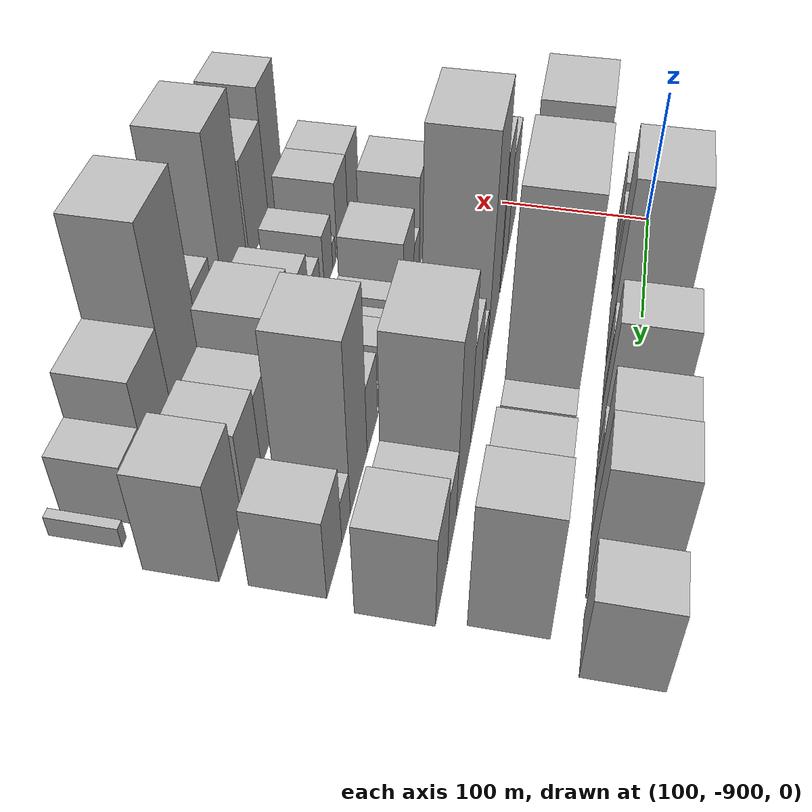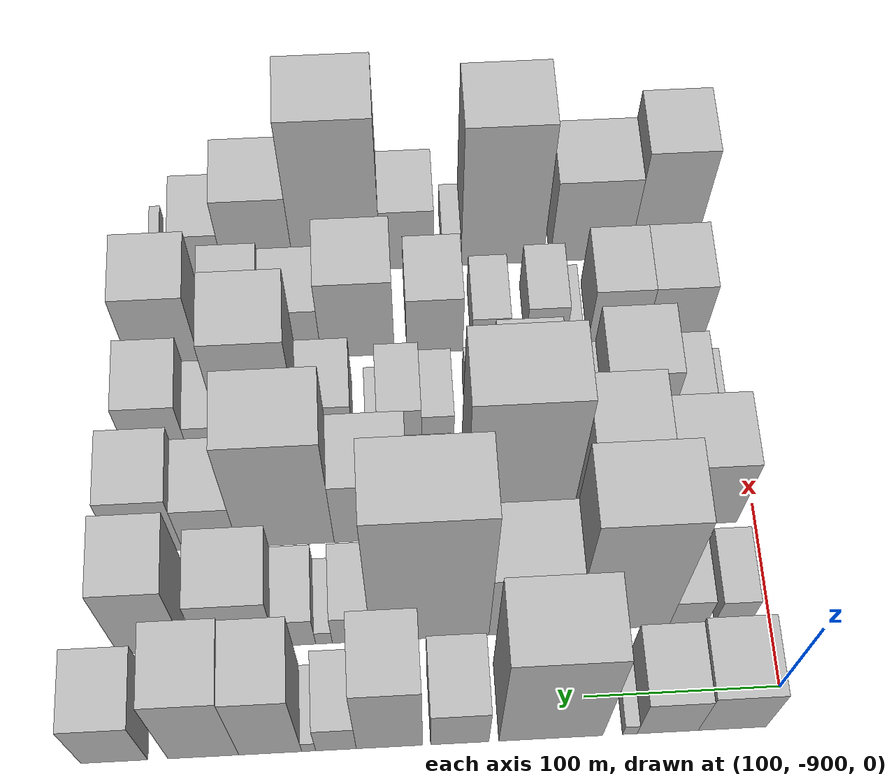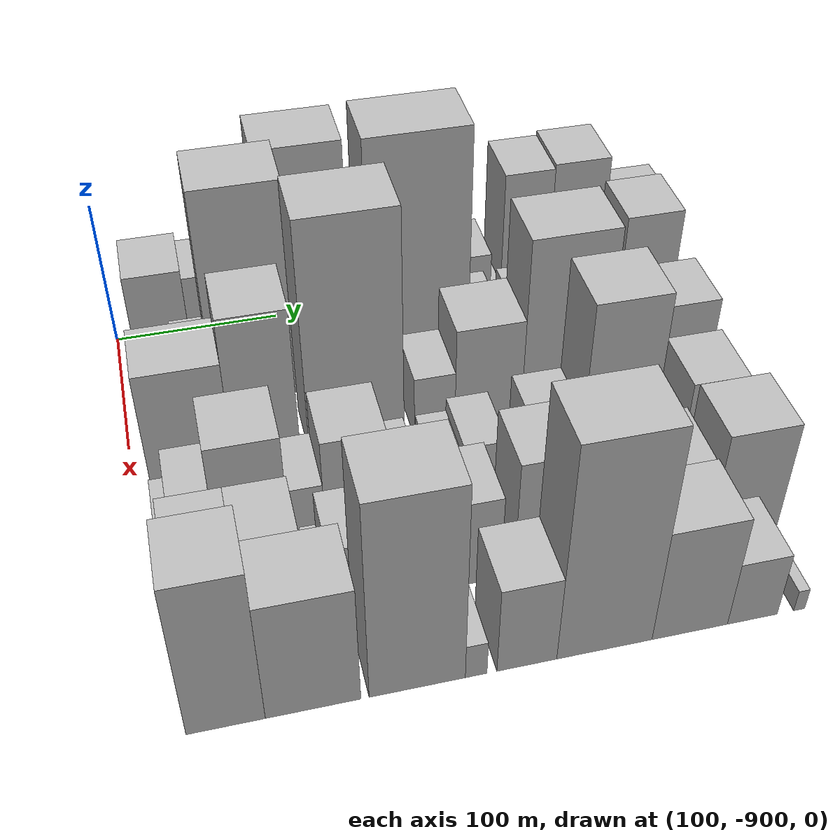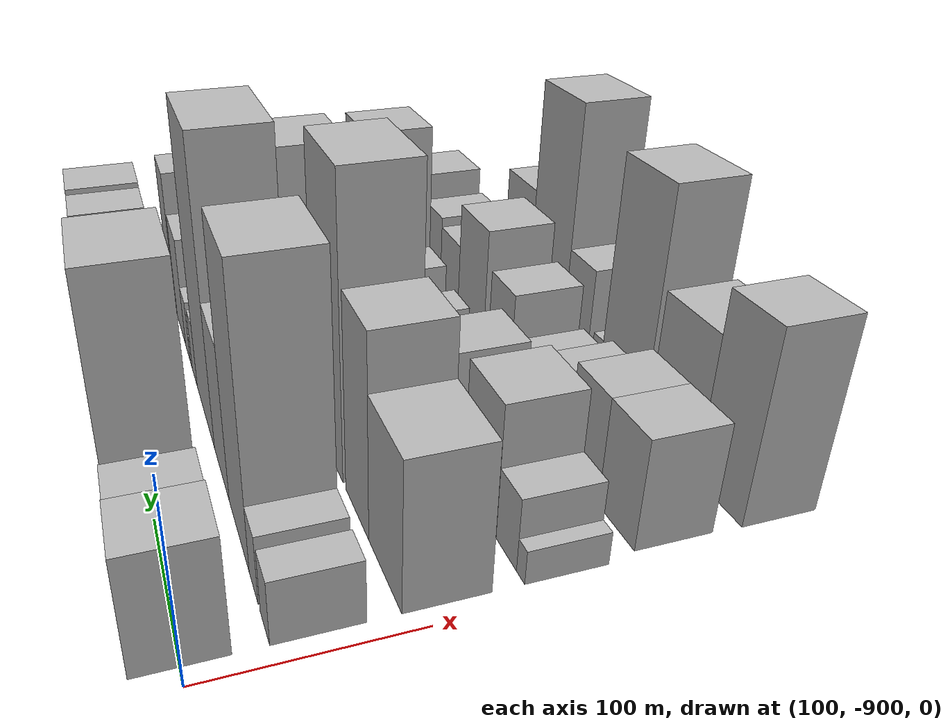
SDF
<sdf version="1.6">
 <world name="default">
  <model name="building_1">
   <static>1</static>
   <pose>100.0000 -872.8744 0 0.000000 0.000000 0.000000</pose>
   <link name="link">
    <pose>0 0 30.00 0 0 0</pose>
    <collision name="collision"><geometry><box><size>40.0000 34.2511 60.0000</size></box></geometry></collision>
    <visual name="visual">
     <cast_shadows>0</cast_shadows>
     <geometry><box><size>40.0000 34.2511 60.0000</size></box></geometry>
     <material>
      <script>
       <uri>model://HANNAS_wall/materials/scripts</uri>
       <uri>model://HANNAS_wall/materials/textures</uri>
       <name>vrc/HANNAS_wall</name>
      </script>
     </material>
    </visual>
   </link>
  </model>
  <model name="building_2">
   <static>1</static>
   <pose>100.0000 -840.3161 0 0.000000 0.000000 0.000000</pose>
   <link name="link">
    <pose>0 0 27.00 0 0 0</pose>
    <collision name="collision"><geometry><box><size>40.0000 30.8656 54.0000</size></box></geometry></collision>
    <visual name="visual">
     <cast_shadows>0</cast_shadows>
     <geometry><box><size>40.0000 30.8656 54.0000</size></box></geometry>
     <material>
      <script>
       <uri>model://HANNAS_wall/materials/scripts</uri>
       <uri>model://HANNAS_wall/materials/textures</uri>
       <name>vrc/HANNAS_wall</name>
      </script>
     </material>
    </visual>
   </link>
  </model>
  <model name="building_3">
   <static>1</static>
   <pose>100.0000 -821.1841 0 0.000000 0.000000 0.000000</pose>
   <link name="link">
    <pose>0 0 7.50 0 0 0</pose>
    <collision name="collision"><geometry><box><size>40.0000 7.3984 15.0000</size></box></geometry></collision>
    <visual name="visual">
     <cast_shadows>0</cast_shadows>
     <geometry><box><size>40.0000 7.3984 15.0000</size></box></geometry>
     <material>
      <script>
       <uri>model://HANNAS_wall/materials/scripts</uri>
       <uri>model://HANNAS_wall/materials/textures</uri>
       <name>vrc/HANNAS_wall</name>
      </script>
     </material>
    </visual>
   </link>
  </model>
  <model name="building_4">
   <static>1</static>
   <pose>100.0000 -781.3801 0 0.000000 0.000000 0.000000</pose>
   <link name="link">
    <pose>0 0 67.50 0 0 0</pose>
    <collision name="collision"><geometry><box><size>40.0000 52.2096 135.0000</size></box></geometry></collision>
    <visual name="visual">
     <cast_shadows>0</cast_shadows>
     <geometry><box><size>40.0000 52.2096 135.0000</size></box></geometry>
     <material>
      <script>
       <uri>model://HANNAS_wall/materials/scripts</uri>
       <uri>model://HANNAS_wall/materials/textures</uri>
       <name>vrc/HANNAS_wall</name>
      </script>
     </material>
    </visual>
   </link>
  </model>
  <model name="building_5">
   <static>1</static>
   <pose>100.0000 -735.6775 0 0.000000 0.000000 0.000000</pose>
   <link name="link">
    <pose>0 0 27.00 0 0 0</pose>
    <collision name="collision"><geometry><box><size>40.0000 29.1955 54.0000</size></box></geometry></collision>
    <visual name="visual">
     <cast_shadows>0</cast_shadows>
     <geometry><box><size>40.0000 29.1955 54.0000</size></box></geometry>
     <material>
      <script>
       <uri>model://HANNAS_wall/materials/scripts</uri>
       <uri>model://HANNAS_wall/materials/textures</uri>
       <name>vrc/HANNAS_wall</name>
      </script>
     </material>
    </visual>
   </link>
  </model>
  <model name="building_6">
   <static>1</static>
   <pose>100.0000 -700.4989 0 0.000000 0.000000 0.000000</pose>
   <link name="link">
    <pose>0 0 49.50 0 0 0</pose>
    <collision name="collision"><geometry><box><size>40.0000 33.1616 99.0000</size></box></geometry></collision>
    <visual name="visual">
     <cast_shadows>0</cast_shadows>
     <geometry><box><size>40.0000 33.1616 99.0000</size></box></geometry>
     <material>
      <script>
       <uri>model://HANNAS_wall/materials/scripts</uri>
       <uri>model://HANNAS_wall/materials/textures</uri>
       <name>vrc/HANNAS_wall</name>
      </script>
     </material>
    </visual>
   </link>
  </model>
  <model name="building_7">
   <static>1</static>
   <pose>100.0000 -673.7841 0 0.000000 0.000000 0.000000</pose>
   <link name="link">
    <pose>0 0 19.50 0 0 0</pose>
    <collision name="collision"><geometry><box><size>40.0000 20.2681 39.0000</size></box></geometry></collision>
    <visual name="visual">
     <cast_shadows>0</cast_shadows>
     <geometry><box><size>40.0000 20.2681 39.0000</size></box></geometry>
     <material>
      <script>
       <uri>model://HANNAS_wall/materials/scripts</uri>
       <uri>model://HANNAS_wall/materials/textures</uri>
       <name>vrc/HANNAS_wall</name>
      </script>
     </material>
    </visual>
   </link>
  </model>
  <model name="building_8">
   <static>1</static>
   <pose>100.0000 -660.1916 0 0.000000 0.000000 0.000000</pose>
   <link name="link">
    <pose>0 0 7.50 0 0 0</pose>
    <collision name="collision"><geometry><box><size>40.0000 6.9169 15.0000</size></box></geometry></collision>
    <visual name="visual">
     <cast_shadows>0</cast_shadows>
     <geometry><box><size>40.0000 6.9169 15.0000</size></box></geometry>
     <material>
      <script>
       <uri>model://HANNAS_wall/materials/scripts</uri>
       <uri>model://HANNAS_wall/materials/textures</uri>
       <name>vrc/HANNAS_wall</name>
      </script>
     </material>
    </visual>
   </link>
  </model>
  <model name="building_9">
   <static>1</static>
   <pose>100.0000 -641.0431 0 0.000000 0.000000 0.000000</pose>
   <link name="link">
    <pose>0 0 48.00 0 0 0</pose>
    <collision name="collision"><geometry><box><size>40.0000 31.3800 96.0000</size></box></geometry></collision>
    <visual name="visual">
     <cast_shadows>0</cast_shadows>
     <geometry><box><size>40.0000 31.3800 96.0000</size></box></geometry>
     <material>
      <script>
       <uri>model://HANNAS_wall/materials/scripts</uri>
       <uri>model://HANNAS_wall/materials/textures</uri>
       <name>vrc/HANNAS_wall</name>
      </script>
     </material>
    </visual>
   </link>
  </model>
  <model name="building_10">
   <static>1</static>
   <pose>100.0000 -607.6673 0 0.000000 0.000000 0.000000</pose>
   <link name="link">
    <pose>0 0 49.50 0 0 0</pose>
    <collision name="collision"><geometry><box><size>40.0000 35.3715 99.0000</size></box></geometry></collision>
    <visual name="visual">
     <cast_shadows>0</cast_shadows>
     <geometry><box><size>40.0000 35.3715 99.0000</size></box></geometry>
     <material>
      <script>
       <uri>model://HANNAS_wall/materials/scripts</uri>
       <uri>model://HANNAS_wall/materials/textures</uri>
       <name>vrc/HANNAS_wall</name>
      </script>
     </material>
    </visual>
   </link>
  </model>
  <model name="building_11">
   <static>1</static>
   <pose>100.0000 -563.3207 0 0.000000 0.000000 0.000000</pose>
   <link name="link">
    <pose>0 0 31.50 0 0 0</pose>
    <collision name="collision"><geometry><box><size>40.0000 33.3217 63.0000</size></box></geometry></collision>
    <visual name="visual">
     <cast_shadows>0</cast_shadows>
     <geometry><box><size>40.0000 33.3217 63.0000</size></box></geometry>
     <material>
      <script>
       <uri>model://HANNAS_wall/materials/scripts</uri>
       <uri>model://HANNAS_wall/materials/textures</uri>
       <name>vrc/HANNAS_wall</name>
      </script>
     </material>
    </visual>
   </link>
  </model>
  <model name="building_51">
   <static>1</static>
   <pose>155.0000 -880.4793 0 0.000000 0.000000 0.000000</pose>
   <link name="link">
    <pose>0 0 16.50 0 0 0</pose>
    <collision name="collision"><geometry><box><size>40.0000 19.0414 33.0000</size></box></geometry></collision>
    <visual name="visual">
     <cast_shadows>0</cast_shadows>
     <geometry><box><size>40.0000 19.0414 33.0000</size></box></geometry>
     <material>
      <script>
       <uri>model://HANNAS_wall/materials/scripts</uri>
       <uri>model://HANNAS_wall/materials/textures</uri>
       <name>vrc/HANNAS_wall</name>
      </script>
     </material>
    </visual>
   </link>
  </model>
  <model name="building_52">
   <static>1</static>
   <pose>155.0000 -857.1713 0 0.000000 0.000000 0.000000</pose>
   <link name="link">
    <pose>0 0 18.00 0 0 0</pose>
    <collision name="collision"><geometry><box><size>40.0000 19.5747 36.0000</size></box></geometry></collision>
    <visual name="visual">
     <cast_shadows>0</cast_shadows>
     <geometry><box><size>40.0000 19.5747 36.0000</size></box></geometry>
     <material>
      <script>
       <uri>model://HANNAS_wall/materials/scripts</uri>
       <uri>model://HANNAS_wall/materials/textures</uri>
       <name>vrc/HANNAS_wall</name>
      </script>
     </material>
    </visual>
   </link>
  </model>
  <model name="building_53">
   <static>1</static>
   <pose>155.0000 -822.4354 0 0.000000 0.000000 0.000000</pose>
   <link name="link">
    <pose>0 0 75.00 0 0 0</pose>
    <collision name="collision"><geometry><box><size>40.0000 49.8970 150.0000</size></box></geometry></collision>
    <visual name="visual">
     <cast_shadows>0</cast_shadows>
     <geometry><box><size>40.0000 49.8970 150.0000</size></box></geometry>
     <material>
      <script>
       <uri>model://HANNAS_wall/materials/scripts</uri>
       <uri>model://HANNAS_wall/materials/textures</uri>
       <name>vrc/HANNAS_wall</name>
      </script>
     </material>
    </visual>
   </link>
  </model>
  <model name="building_54">
   <static>1</static>
   <pose>155.0000 -775.7857 0 0.000000 0.000000 0.000000</pose>
   <link name="link">
    <pose>0 0 42.00 0 0 0</pose>
    <collision name="collision"><geometry><box><size>40.0000 43.4024 84.0000</size></box></geometry></collision>
    <visual name="visual">
     <cast_shadows>0</cast_shadows>
     <geometry><box><size>40.0000 43.4024 84.0000</size></box></geometry>
     <material>
      <script>
       <uri>model://HANNAS_wall/materials/scripts</uri>
       <uri>model://HANNAS_wall/materials/textures</uri>
       <name>vrc/HANNAS_wall</name>
      </script>
     </material>
    </visual>
   </link>
  </model>
  <model name="building_55">
   <static>1</static>
   <pose>155.0000 -723.6793 0 0.000000 0.000000 0.000000</pose>
   <link name="link">
    <pose>0 0 84.00 0 0 0</pose>
    <collision name="collision"><geometry><box><size>40.0000 60.8103 168.0000</size></box></geometry></collision>
    <visual name="visual">
     <cast_shadows>0</cast_shadows>
     <geometry><box><size>40.0000 60.8103 168.0000</size></box></geometry>
     <material>
      <script>
       <uri>model://HANNAS_wall/materials/scripts</uri>
       <uri>model://HANNAS_wall/materials/textures</uri>
       <name>vrc/HANNAS_wall</name>
      </script>
     </material>
    </visual>
   </link>
  </model>
  <model name="building_56">
   <static>1</static>
   <pose>155.0000 -683.3536 0 0.000000 0.000000 0.000000</pose>
   <link name="link">
    <pose>0 0 19.50 0 0 0</pose>
    <collision name="collision"><geometry><box><size>40.0000 19.8412 39.0000</size></box></geometry></collision>
    <visual name="visual">
     <cast_shadows>0</cast_shadows>
     <geometry><box><size>40.0000 19.8412 39.0000</size></box></geometry>
     <material>
      <script>
       <uri>model://HANNAS_wall/materials/scripts</uri>
       <uri>model://HANNAS_wall/materials/textures</uri>
       <name>vrc/HANNAS_wall</name>
      </script>
     </material>
    </visual>
   </link>
  </model>
  <model name="building_57">
   <static>1</static>
   <pose>155.0000 -669.1468 0 0.000000 0.000000 0.000000</pose>
   <link name="link">
    <pose>0 0 9.00 0 0 0</pose>
    <collision name="collision"><geometry><box><size>40.0000 8.5725 18.0000</size></box></geometry></collision>
    <visual name="visual">
     <cast_shadows>0</cast_shadows>
     <geometry><box><size>40.0000 8.5725 18.0000</size></box></geometry>
     <material>
      <script>
       <uri>model://HANNAS_wall/materials/scripts</uri>
       <uri>model://HANNAS_wall/materials/textures</uri>
       <name>vrc/HANNAS_wall</name>
      </script>
     </material>
    </visual>
   </link>
  </model>
  <model name="building_58">
   <static>1</static>
   <pose>155.0000 -654.7512 0 0.000000 0.000000 0.000000</pose>
   <link name="link">
    <pose>0 0 19.50 0 0 0</pose>
    <collision name="collision"><geometry><box><size>40.0000 20.2185 39.0000</size></box></geometry></collision>
    <visual name="visual">
     <cast_shadows>0</cast_shadows>
     <geometry><box><size>40.0000 20.2185 39.0000</size></box></geometry>
     <material>
      <script>
       <uri>model://HANNAS_wall/materials/scripts</uri>
       <uri>model://HANNAS_wall/materials/textures</uri>
       <name>vrc/HANNAS_wall</name>
      </script>
     </material>
    </visual>
   </link>
  </model>
  <model name="building_59">
   <static>1</static>
   <pose>155.0000 -624.8947 0 0.000000 0.000000 0.000000</pose>
   <link name="link">
    <pose>0 0 34.50 0 0 0</pose>
    <collision name="collision"><geometry><box><size>40.0000 39.4947 69.0000</size></box></geometry></collision>
    <visual name="visual">
     <cast_shadows>0</cast_shadows>
     <geometry><box><size>40.0000 39.4947 69.0000</size></box></geometry>
     <material>
      <script>
       <uri>model://HANNAS_wall/materials/scripts</uri>
       <uri>model://HANNAS_wall/materials/textures</uri>
       <name>vrc/HANNAS_wall</name>
      </script>
     </material>
    </visual>
   </link>
  </model>
  <model name="building_60">
   <static>1</static>
   <pose>155.0000 -601.9938 0 0.000000 0.000000 0.000000</pose>
   <link name="link">
    <pose>0 0 7.50 0 0 0</pose>
    <collision name="collision"><geometry><box><size>40.0000 6.3071 15.0000</size></box></geometry></collision>
    <visual name="visual">
     <cast_shadows>0</cast_shadows>
     <geometry><box><size>40.0000 6.3071 15.0000</size></box></geometry>
     <material>
      <script>
       <uri>model://HANNAS_wall/materials/scripts</uri>
       <uri>model://HANNAS_wall/materials/textures</uri>
       <name>vrc/HANNAS_wall</name>
      </script>
     </material>
    </visual>
   </link>
  </model>
  <model name="building_61">
   <static>1</static>
   <pose>155.0000 -581.3844 0 0.000000 0.000000 0.000000</pose>
   <link name="link">
    <pose>0 0 46.50 0 0 0</pose>
    <collision name="collision"><geometry><box><size>40.0000 34.9116 93.0000</size></box></geometry></collision>
    <visual name="visual">
     <cast_shadows>0</cast_shadows>
     <geometry><box><size>40.0000 34.9116 93.0000</size></box></geometry>
     <material>
      <script>
       <uri>model://HANNAS_wall/materials/scripts</uri>
       <uri>model://HANNAS_wall/materials/textures</uri>
       <name>vrc/HANNAS_wall</name>
      </script>
     </material>
    </visual>
   </link>
  </model>
  <model name="building_108">
   <static>1</static>
   <pose>210.0000 -866.6868 0 0.000000 0.000000 0.000000</pose>
   <link name="link">
    <pose>0 0 39.00 0 0 0</pose>
    <collision name="collision"><geometry><box><size>40.0000 46.6263 78.0000</size></box></geometry></collision>
    <visual name="visual">
     <cast_shadows>0</cast_shadows>
     <geometry><box><size>40.0000 46.6263 78.0000</size></box></geometry>
     <material>
      <script>
       <uri>model://HANNAS_wall/materials/scripts</uri>
       <uri>model://HANNAS_wall/materials/textures</uri>
       <name>vrc/HANNAS_wall</name>
      </script>
     </material>
    </visual>
   </link>
  </model>
  <model name="building_109">
   <static>1</static>
   <pose>210.0000 -824.3834 0 0.000000 0.000000 0.000000</pose>
   <link name="link">
    <pose>0 0 54.00 0 0 0</pose>
    <collision name="collision"><geometry><box><size>40.0000 37.9806 108.0000</size></box></geometry></collision>
    <visual name="visual">
     <cast_shadows>0</cast_shadows>
     <geometry><box><size>40.0000 37.9806 108.0000</size></box></geometry>
     <material>
      <script>
       <uri>model://HANNAS_wall/materials/scripts</uri>
       <uri>model://HANNAS_wall/materials/textures</uri>
       <name>vrc/HANNAS_wall</name>
      </script>
     </material>
    </visual>
   </link>
  </model>
  <model name="building_110">
   <static>1</static>
   <pose>210.0000 -772.8767 0 0.000000 0.000000 0.000000</pose>
   <link name="link">
    <pose>0 0 81.00 0 0 0</pose>
    <collision name="collision"><geometry><box><size>40.0000 55.0326 162.0000</size></box></geometry></collision>
    <visual name="visual">
     <cast_shadows>0</cast_shadows>
     <geometry><box><size>40.0000 55.0326 162.0000</size></box></geometry>
     <material>
      <script>
       <uri>model://HANNAS_wall/materials/scripts</uri>
       <uri>model://HANNAS_wall/materials/textures</uri>
       <name>vrc/HANNAS_wall</name>
      </script>
     </material>
    </visual>
   </link>
  </model>
  <model name="building_111">
   <static>1</static>
   <pose>210.0000 -727.4313 0 0.000000 0.000000 0.000000</pose>
   <link name="link">
    <pose>0 0 22.50 0 0 0</pose>
    <collision name="collision"><geometry><box><size>40.0000 23.8582 45.0000</size></box></geometry></collision>
    <visual name="visual">
     <cast_shadows>0</cast_shadows>
     <geometry><box><size>40.0000 23.8582 45.0000</size></box></geometry>
     <material>
      <script>
       <uri>model://HANNAS_wall/materials/scripts</uri>
       <uri>model://HANNAS_wall/materials/textures</uri>
       <name>vrc/HANNAS_wall</name>
      </script>
     </material>
    </visual>
   </link>
  </model>
  <model name="building_112">
   <static>1</static>
   <pose>210.0000 -695.6822 0 0.000000 0.000000 0.000000</pose>
   <link name="link">
    <pose>0 0 37.50 0 0 0</pose>
    <collision name="collision"><geometry><box><size>40.0000 39.6400 75.0000</size></box></geometry></collision>
    <visual name="visual">
     <cast_shadows>0</cast_shadows>
     <geometry><box><size>40.0000 39.6400 75.0000</size></box></geometry>
     <material>
      <script>
       <uri>model://HANNAS_wall/materials/scripts</uri>
       <uri>model://HANNAS_wall/materials/textures</uri>
       <name>vrc/HANNAS_wall</name>
      </script>
     </material>
    </visual>
   </link>
  </model>
  <model name="building_113">
   <static>1</static>
   <pose>210.0000 -650.5415 0 0.000000 0.000000 0.000000</pose>
   <link name="link">
    <pose>0 0 64.50 0 0 0</pose>
    <collision name="collision"><geometry><box><size>40.0000 50.6415 129.0000</size></box></geometry></collision>
    <visual name="visual">
     <cast_shadows>0</cast_shadows>
     <geometry><box><size>40.0000 50.6415 129.0000</size></box></geometry>
     <material>
      <script>
       <uri>model://HANNAS_wall/materials/scripts</uri>
       <uri>model://HANNAS_wall/materials/textures</uri>
       <name>vrc/HANNAS_wall</name>
      </script>
     </material>
    </visual>
   </link>
  </model>
  <model name="building_114">
   <static>1</static>
   <pose>210.0000 -610.5970 0 0.000000 0.000000 0.000000</pose>
   <link name="link">
    <pose>0 0 27.00 0 0 0</pose>
    <collision name="collision"><geometry><box><size>40.0000 29.2475 54.0000</size></box></geometry></collision>
    <visual name="visual">
     <cast_shadows>0</cast_shadows>
     <geometry><box><size>40.0000 29.2475 54.0000</size></box></geometry>
     <material>
      <script>
       <uri>model://HANNAS_wall/materials/scripts</uri>
       <uri>model://HANNAS_wall/materials/textures</uri>
       <name>vrc/HANNAS_wall</name>
      </script>
     </material>
    </visual>
   </link>
  </model>
  <model name="building_115">
   <static>1</static>
   <pose>210.0000 -578.2691 0 0.000000 0.000000 0.000000</pose>
   <link name="link">
    <pose>0 0 34.50 0 0 0</pose>
    <collision name="collision"><geometry><box><size>40.0000 35.4084 69.0000</size></box></geometry></collision>
    <visual name="visual">
     <cast_shadows>0</cast_shadows>
     <geometry><box><size>40.0000 35.4084 69.0000</size></box></geometry>
     <material>
      <script>
       <uri>model://HANNAS_wall/materials/scripts</uri>
       <uri>model://HANNAS_wall/materials/textures</uri>
       <name>vrc/HANNAS_wall</name>
      </script>
     </material>
    </visual>
   </link>
  </model>
  <model name="building_156">
   <static>1</static>
   <pose>265.0000 -885.7852 0 0.000000 0.000000 0.000000</pose>
   <link name="link">
    <pose>0 0 9.00 0 0 0</pose>
    <collision name="collision"><geometry><box><size>40.0000 8.4296 18.0000</size></box></geometry></collision>
    <visual name="visual">
     <cast_shadows>0</cast_shadows>
     <geometry><box><size>40.0000 8.4296 18.0000</size></box></geometry>
     <material>
      <script>
       <uri>model://HANNAS_wall/materials/scripts</uri>
       <uri>model://HANNAS_wall/materials/textures</uri>
       <name>vrc/HANNAS_wall</name>
      </script>
     </material>
    </visual>
   </link>
  </model>
  <model name="building_157">
   <static>1</static>
   <pose>265.0000 -870.5943 0 0.000000 0.000000 0.000000</pose>
   <link name="link">
    <pose>0 0 19.50 0 0 0</pose>
    <collision name="collision"><geometry><box><size>40.0000 21.9522 39.0000</size></box></geometry></collision>
    <visual name="visual">
     <cast_shadows>0</cast_shadows>
     <geometry><box><size>40.0000 21.9522 39.0000</size></box></geometry>
     <material>
      <script>
       <uri>model://HANNAS_wall/materials/scripts</uri>
       <uri>model://HANNAS_wall/materials/textures</uri>
       <name>vrc/HANNAS_wall</name>
      </script>
     </material>
    </visual>
   </link>
  </model>
  <model name="building_158">
   <static>1</static>
   <pose>265.0000 -840.2185 0 0.000000 0.000000 0.000000</pose>
   <link name="link">
    <pose>0 0 36.00 0 0 0</pose>
    <collision name="collision"><geometry><box><size>40.0000 38.7994 72.0000</size></box></geometry></collision>
    <visual name="visual">
     <cast_shadows>0</cast_shadows>
     <geometry><box><size>40.0000 38.7994 72.0000</size></box></geometry>
     <material>
      <script>
       <uri>model://HANNAS_wall/materials/scripts</uri>
       <uri>model://HANNAS_wall/materials/textures</uri>
       <name>vrc/HANNAS_wall</name>
      </script>
     </material>
    </visual>
   </link>
  </model>
  <model name="building_159">
   <static>1</static>
   <pose>265.0000 -811.1052 0 0.000000 0.000000 0.000000</pose>
   <link name="link">
    <pose>0 0 16.50 0 0 0</pose>
    <collision name="collision"><geometry><box><size>40.0000 19.4271 33.0000</size></box></geometry></collision>
    <visual name="visual">
     <cast_shadows>0</cast_shadows>
     <geometry><box><size>40.0000 19.4271 33.0000</size></box></geometry>
     <material>
      <script>
       <uri>model://HANNAS_wall/materials/scripts</uri>
       <uri>model://HANNAS_wall/materials/textures</uri>
       <name>vrc/HANNAS_wall</name>
      </script>
     </material>
    </visual>
   </link>
  </model>
  <model name="building_160">
   <static>1</static>
   <pose>265.0000 -783.8212 0 0.000000 0.000000 0.000000</pose>
   <link name="link">
    <pose>0 0 31.50 0 0 0</pose>
    <collision name="collision"><geometry><box><size>40.0000 35.1409 63.0000</size></box></geometry></collision>
    <visual name="visual">
     <cast_shadows>0</cast_shadows>
     <geometry><box><size>40.0000 35.1409 63.0000</size></box></geometry>
     <material>
      <script>
       <uri>model://HANNAS_wall/materials/scripts</uri>
       <uri>model://HANNAS_wall/materials/textures</uri>
       <name>vrc/HANNAS_wall</name>
      </script>
     </material>
    </visual>
   </link>
  </model>
  <model name="building_161">
   <static>1</static>
   <pose>265.0000 -757.8597 0 0.000000 0.000000 0.000000</pose>
   <link name="link">
    <pose>0 0 16.50 0 0 0</pose>
    <collision name="collision"><geometry><box><size>40.0000 16.7820 33.0000</size></box></geometry></collision>
    <visual name="visual">
     <cast_shadows>0</cast_shadows>
     <geometry><box><size>40.0000 16.7820 33.0000</size></box></geometry>
     <material>
      <script>
       <uri>model://HANNAS_wall/materials/scripts</uri>
       <uri>model://HANNAS_wall/materials/textures</uri>
       <name>vrc/HANNAS_wall</name>
      </script>
     </material>
    </visual>
   </link>
  </model>
  <model name="building_162">
   <static>1</static>
   <pose>265.0000 -733.7501 0 0.000000 0.000000 0.000000</pose>
   <link name="link">
    <pose>0 0 16.50 0 0 0</pose>
    <collision name="collision"><geometry><box><size>40.0000 17.4372 33.0000</size></box></geometry></collision>
    <visual name="visual">
     <cast_shadows>0</cast_shadows>
     <geometry><box><size>40.0000 17.4372 33.0000</size></box></geometry>
     <material>
      <script>
       <uri>model://HANNAS_wall/materials/scripts</uri>
       <uri>model://HANNAS_wall/materials/textures</uri>
       <name>vrc/HANNAS_wall</name>
      </script>
     </material>
    </visual>
   </link>
  </model>
  <model name="building_163">
   <static>1</static>
   <pose>265.0000 -713.2501 0 0.000000 0.000000 0.000000</pose>
   <link name="link">
    <pose>0 0 21.00 0 0 0</pose>
    <collision name="collision"><geometry><box><size>40.0000 23.5629 42.0000</size></box></geometry></collision>
    <visual name="visual">
     <cast_shadows>0</cast_shadows>
     <geometry><box><size>40.0000 23.5629 42.0000</size></box></geometry>
     <material>
      <script>
       <uri>model://HANNAS_wall/materials/scripts</uri>
       <uri>model://HANNAS_wall/materials/textures</uri>
       <name>vrc/HANNAS_wall</name>
      </script>
     </material>
    </visual>
   </link>
  </model>
  <model name="building_164">
   <static>1</static>
   <pose>265.0000 -698.2263 0 0.000000 0.000000 0.000000</pose>
   <link name="link">
    <pose>0 0 7.50 0 0 0</pose>
    <collision name="collision"><geometry><box><size>40.0000 6.4849 15.0000</size></box></geometry></collision>
    <visual name="visual">
     <cast_shadows>0</cast_shadows>
     <geometry><box><size>40.0000 6.4849 15.0000</size></box></geometry>
     <material>
      <script>
       <uri>model://HANNAS_wall/materials/scripts</uri>
       <uri>model://HANNAS_wall/materials/textures</uri>
       <name>vrc/HANNAS_wall</name>
      </script>
     </material>
    </visual>
   </link>
  </model>
  <model name="building_165">
   <static>1</static>
   <pose>265.0000 -673.8587 0 0.000000 0.000000 0.000000</pose>
   <link name="link">
    <pose>0 0 25.50 0 0 0</pose>
    <collision name="collision"><geometry><box><size>40.0000 28.2502 51.0000</size></box></geometry></collision>
    <visual name="visual">
     <cast_shadows>0</cast_shadows>
     <geometry><box><size>40.0000 28.2502 51.0000</size></box></geometry>
     <material>
      <script>
       <uri>model://HANNAS_wall/materials/scripts</uri>
       <uri>model://HANNAS_wall/materials/textures</uri>
       <name>vrc/HANNAS_wall</name>
      </script>
     </material>
    </visual>
   </link>
  </model>
  <model name="building_166">
   <static>1</static>
   <pose>265.0000 -639.0103 0 0.000000 0.000000 0.000000</pose>
   <link name="link">
    <pose>0 0 63.00 0 0 0</pose>
    <collision name="collision"><geometry><box><size>40.0000 41.4467 126.0000</size></box></geometry></collision>
    <visual name="visual">
     <cast_shadows>0</cast_shadows>
     <geometry><box><size>40.0000 41.4467 126.0000</size></box></geometry>
     <material>
      <script>
       <uri>model://HANNAS_wall/materials/scripts</uri>
       <uri>model://HANNAS_wall/materials/textures</uri>
       <name>vrc/HANNAS_wall</name>
      </script>
     </material>
    </visual>
   </link>
  </model>
  <model name="building_167">
   <static>1</static>
   <pose>265.0000 -608.4225 0 0.000000 0.000000 0.000000</pose>
   <link name="link">
    <pose>0 0 16.50 0 0 0</pose>
    <collision name="collision"><geometry><box><size>40.0000 19.7287 33.0000</size></box></geometry></collision>
    <visual name="visual">
     <cast_shadows>0</cast_shadows>
     <geometry><box><size>40.0000 19.7287 33.0000</size></box></geometry>
     <material>
      <script>
       <uri>model://HANNAS_wall/materials/scripts</uri>
       <uri>model://HANNAS_wall/materials/textures</uri>
       <name>vrc/HANNAS_wall</name>
      </script>
     </material>
    </visual>
   </link>
  </model>
  <model name="building_168">
   <static>1</static>
   <pose>265.0000 -582.2497 0 0.000000 0.000000 0.000000</pose>
   <link name="link">
    <pose>0 0 30.00 0 0 0</pose>
    <collision name="collision"><geometry><box><size>40.0000 32.6169 60.0000</size></box></geometry></collision>
    <visual name="visual">
     <cast_shadows>0</cast_shadows>
     <geometry><box><size>40.0000 32.6169 60.0000</size></box></geometry>
     <material>
      <script>
       <uri>model://HANNAS_wall/materials/scripts</uri>
       <uri>model://HANNAS_wall/materials/textures</uri>
       <name>vrc/HANNAS_wall</name>
      </script>
     </material>
    </visual>
   </link>
  </model>
  <model name="building_210">
   <static>1</static>
   <pose>320.0000 -869.4660 0 0.000000 0.000000 0.000000</pose>
   <link name="link">
    <pose>0 0 30.00 0 0 0</pose>
    <collision name="collision"><geometry><box><size>40.0000 33.0680 60.0000</size></box></geometry></collision>
    <visual name="visual">
     <cast_shadows>0</cast_shadows>
     <geometry><box><size>40.0000 33.0680 60.0000</size></box></geometry>
     <material>
      <script>
       <uri>model://HANNAS_wall/materials/scripts</uri>
       <uri>model://HANNAS_wall/materials/textures</uri>
       <name>vrc/HANNAS_wall</name>
      </script>
     </material>
    </visual>
   </link>
  </model>
  <model name="building_211">
   <static>1</static>
   <pose>320.0000 -836.9223 0 0.000000 0.000000 0.000000</pose>
   <link name="link">
    <pose>0 0 30.00 0 0 0</pose>
    <collision name="collision"><geometry><box><size>40.0000 32.0193 60.0000</size></box></geometry></collision>
    <visual name="visual">
     <cast_shadows>0</cast_shadows>
     <geometry><box><size>40.0000 32.0193 60.0000</size></box></geometry>
     <material>
      <script>
       <uri>model://HANNAS_wall/materials/scripts</uri>
       <uri>model://HANNAS_wall/materials/textures</uri>
       <name>vrc/HANNAS_wall</name>
      </script>
     </material>
    </visual>
   </link>
  </model>
  <model name="building_212">
   <static>1</static>
   <pose>320.0000 -812.6448 0 0.000000 0.000000 0.000000</pose>
   <link name="link">
    <pose>0 0 10.50 0 0 0</pose>
    <collision name="collision"><geometry><box><size>40.0000 8.5357 21.0000</size></box></geometry></collision>
    <visual name="visual">
     <cast_shadows>0</cast_shadows>
     <geometry><box><size>40.0000 8.5357 21.0000</size></box></geometry>
     <material>
      <script>
       <uri>model://HANNAS_wall/materials/scripts</uri>
       <uri>model://HANNAS_wall/materials/textures</uri>
       <name>vrc/HANNAS_wall</name>
      </script>
     </material>
    </visual>
   </link>
  </model>
  <model name="building_213">
   <static>1</static>
   <pose>320.0000 -797.0834 0 0.000000 0.000000 0.000000</pose>
   <link name="link">
    <pose>0 0 22.50 0 0 0</pose>
    <collision name="collision"><geometry><box><size>40.0000 22.5872 45.0000</size></box></geometry></collision>
    <visual name="visual">
     <cast_shadows>0</cast_shadows>
     <geometry><box><size>40.0000 22.5872 45.0000</size></box></geometry>
     <material>
      <script>
       <uri>model://HANNAS_wall/materials/scripts</uri>
       <uri>model://HANNAS_wall/materials/textures</uri>
       <name>vrc/HANNAS_wall</name>
      </script>
     </material>
    </visual>
   </link>
  </model>
  <model name="building_214">
   <static>1</static>
   <pose>320.0000 -766.2433 0 0.000000 0.000000 0.000000</pose>
   <link name="link">
    <pose>0 0 18.00 0 0 0</pose>
    <collision name="collision"><geometry><box><size>40.0000 21.0929 36.0000</size></box></geometry></collision>
    <visual name="visual">
     <cast_shadows>0</cast_shadows>
     <geometry><box><size>40.0000 21.0929 36.0000</size></box></geometry>
     <material>
      <script>
       <uri>model://HANNAS_wall/materials/scripts</uri>
       <uri>model://HANNAS_wall/materials/textures</uri>
       <name>vrc/HANNAS_wall</name>
      </script>
     </material>
    </visual>
   </link>
  </model>
  <model name="building_215">
   <static>1</static>
   <pose>320.0000 -735.1001 0 0.000000 0.000000 0.000000</pose>
   <link name="link">
    <pose>0 0 30.00 0 0 0</pose>
    <collision name="collision"><geometry><box><size>40.0000 31.1935 60.0000</size></box></geometry></collision>
    <visual name="visual">
     <cast_shadows>0</cast_shadows>
     <geometry><box><size>40.0000 31.1935 60.0000</size></box></geometry>
     <material>
      <script>
       <uri>model://HANNAS_wall/materials/scripts</uri>
       <uri>model://HANNAS_wall/materials/textures</uri>
       <name>vrc/HANNAS_wall</name>
      </script>
     </material>
    </visual>
   </link>
  </model>
  <model name="building_216">
   <static>1</static>
   <pose>320.0000 -692.1235 0 0.000000 0.000000 0.000000</pose>
   <link name="link">
    <pose>0 0 40.50 0 0 0</pose>
    <collision name="collision"><geometry><box><size>40.0000 40.7597 81.0000</size></box></geometry></collision>
    <visual name="visual">
     <cast_shadows>0</cast_shadows>
     <geometry><box><size>40.0000 40.7597 81.0000</size></box></geometry>
     <material>
      <script>
       <uri>model://HANNAS_wall/materials/scripts</uri>
       <uri>model://HANNAS_wall/materials/textures</uri>
       <name>vrc/HANNAS_wall</name>
      </script>
     </material>
    </visual>
   </link>
  </model>
  <model name="building_217">
   <static>1</static>
   <pose>320.0000 -656.2735 0 0.000000 0.000000 0.000000</pose>
   <link name="link">
    <pose>0 0 27.00 0 0 0</pose>
    <collision name="collision"><geometry><box><size>40.0000 30.9404 54.0000</size></box></geometry></collision>
    <visual name="visual">
     <cast_shadows>0</cast_shadows>
     <geometry><box><size>40.0000 30.9404 54.0000</size></box></geometry>
     <material>
      <script>
       <uri>model://HANNAS_wall/materials/scripts</uri>
       <uri>model://HANNAS_wall/materials/textures</uri>
       <name>vrc/HANNAS_wall</name>
      </script>
     </material>
    </visual>
   </link>
  </model>
  <model name="building_218">
   <static>1</static>
   <pose>320.0000 -624.9310 0 0.000000 0.000000 0.000000</pose>
   <link name="link">
    <pose>0 0 30.00 0 0 0</pose>
    <collision name="collision"><geometry><box><size>40.0000 31.7445 60.0000</size></box></geometry></collision>
    <visual name="visual">
     <cast_shadows>0</cast_shadows>
     <geometry><box><size>40.0000 31.7445 60.0000</size></box></geometry>
     <material>
      <script>
       <uri>model://HANNAS_wall/materials/scripts</uri>
       <uri>model://HANNAS_wall/materials/textures</uri>
       <name>vrc/HANNAS_wall</name>
      </script>
     </material>
    </visual>
   </link>
  </model>
  <model name="building_219">
   <static>1</static>
   <pose>320.0000 -584.6150 0 0.000000 0.000000 0.000000</pose>
   <link name="link">
    <pose>0 0 37.50 0 0 0</pose>
    <collision name="collision"><geometry><box><size>40.0000 38.8875 75.0000</size></box></geometry></collision>
    <visual name="visual">
     <cast_shadows>0</cast_shadows>
     <geometry><box><size>40.0000 38.8875 75.0000</size></box></geometry>
     <material>
      <script>
       <uri>model://HANNAS_wall/materials/scripts</uri>
       <uri>model://HANNAS_wall/materials/textures</uri>
       <name>vrc/HANNAS_wall</name>
      </script>
     </material>
    </visual>
   </link>
  </model>
  <model name="building_263">
   <static>1</static>
   <pose>375.0000 -868.4845 0 0.000000 0.000000 0.000000</pose>
   <link name="link">
    <pose>0 0 52.50 0 0 0</pose>
    <collision name="collision"><geometry><box><size>40.0000 37.0310 105.0000</size></box></geometry></collision>
    <visual name="visual">
     <cast_shadows>0</cast_shadows>
     <geometry><box><size>40.0000 37.0310 105.0000</size></box></geometry>
     <material>
      <script>
       <uri>model://HANNAS_wall/materials/scripts</uri>
       <uri>model://HANNAS_wall/materials/textures</uri>
       <name>vrc/HANNAS_wall</name>
      </script>
     </material>
    </visual>
   </link>
  </model>
  <model name="building_264">
   <static>1</static>
   <pose>375.0000 -827.1754 0 0.000000 0.000000 0.000000</pose>
   <link name="link">
    <pose>0 0 40.50 0 0 0</pose>
    <collision name="collision"><geometry><box><size>40.0000 45.5873 81.0000</size></box></geometry></collision>
    <visual name="visual">
     <cast_shadows>0</cast_shadows>
     <geometry><box><size>40.0000 45.5873 81.0000</size></box></geometry>
     <material>
      <script>
       <uri>model://HANNAS_wall/materials/scripts</uri>
       <uri>model://HANNAS_wall/materials/textures</uri>
       <name>vrc/HANNAS_wall</name>
      </script>
     </material>
    </visual>
   </link>
  </model>
  <model name="building_265">
   <static>1</static>
   <pose>375.0000 -776.7601 0 0.000000 0.000000 0.000000</pose>
   <link name="link">
    <pose>0 0 67.50 0 0 0</pose>
    <collision name="collision"><geometry><box><size>40.0000 47.2435 135.0000</size></box></geometry></collision>
    <visual name="visual">
     <cast_shadows>0</cast_shadows>
     <geometry><box><size>40.0000 47.2435 135.0000</size></box></geometry>
     <material>
      <script>
       <uri>model://HANNAS_wall/materials/scripts</uri>
       <uri>model://HANNAS_wall/materials/textures</uri>
       <name>vrc/HANNAS_wall</name>
      </script>
     </material>
    </visual>
   </link>
  </model>
  <model name="building_266">
   <static>1</static>
   <pose>375.0000 -747.7462 0 0.000000 0.000000 0.000000</pose>
   <link name="link">
    <pose>0 0 12.00 0 0 0</pose>
    <collision name="collision"><geometry><box><size>40.0000 10.7843 24.0000</size></box></geometry></collision>
    <visual name="visual">
     <cast_shadows>0</cast_shadows>
     <geometry><box><size>40.0000 10.7843 24.0000</size></box></geometry>
     <material>
      <script>
       <uri>model://HANNAS_wall/materials/scripts</uri>
       <uri>model://HANNAS_wall/materials/textures</uri>
       <name>vrc/HANNAS_wall</name>
      </script>
     </material>
    </visual>
   </link>
  </model>
  <model name="building_267">
   <static>1</static>
   <pose>375.0000 -722.2033 0 0.000000 0.000000 0.000000</pose>
   <link name="link">
    <pose>0 0 30.00 0 0 0</pose>
    <collision name="collision"><geometry><box><size>40.0000 30.3013 60.0000</size></box></geometry></collision>
    <visual name="visual">
     <cast_shadows>0</cast_shadows>
     <geometry><box><size>40.0000 30.3013 60.0000</size></box></geometry>
     <material>
      <script>
       <uri>model://HANNAS_wall/materials/scripts</uri>
       <uri>model://HANNAS_wall/materials/textures</uri>
       <name>vrc/HANNAS_wall</name>
      </script>
     </material>
    </visual>
   </link>
  </model>
  <model name="building_268">
   <static>1</static>
   <pose>375.0000 -682.3887 0 0.000000 0.000000 0.000000</pose>
   <link name="link">
    <pose>0 0 73.50 0 0 0</pose>
    <collision name="collision"><geometry><box><size>40.0000 49.3281 147.0000</size></box></geometry></collision>
    <visual name="visual">
     <cast_shadows>0</cast_shadows>
     <geometry><box><size>40.0000 49.3281 147.0000</size></box></geometry>
     <material>
      <script>
       <uri>model://HANNAS_wall/materials/scripts</uri>
       <uri>model://HANNAS_wall/materials/textures</uri>
       <name>vrc/HANNAS_wall</name>
      </script>
     </material>
    </visual>
   </link>
  </model>
  <model name="building_269">
   <static>1</static>
   <pose>375.0000 -637.7004 0 0.000000 0.000000 0.000000</pose>
   <link name="link">
    <pose>0 0 39.00 0 0 0</pose>
    <collision name="collision"><geometry><box><size>40.0000 40.0484 78.0000</size></box></geometry></collision>
    <visual name="visual">
     <cast_shadows>0</cast_shadows>
     <geometry><box><size>40.0000 40.0484 78.0000</size></box></geometry>
     <material>
      <script>
       <uri>model://HANNAS_wall/materials/scripts</uri>
       <uri>model://HANNAS_wall/materials/textures</uri>
       <name>vrc/HANNAS_wall</name>
      </script>
     </material>
    </visual>
   </link>
  </model>
  <model name="building_270">
   <static>1</static>
   <pose>375.0000 -604.2506 0 0.000000 0.000000 0.000000</pose>
   <link name="link">
    <pose>0 0 22.50 0 0 0</pose>
    <collision name="collision"><geometry><box><size>40.0000 26.8514 45.0000</size></box></geometry></collision>
    <visual name="visual">
     <cast_shadows>0</cast_shadows>
     <geometry><box><size>40.0000 26.8514 45.0000</size></box></geometry>
     <material>
      <script>
       <uri>model://HANNAS_wall/materials/scripts</uri>
       <uri>model://HANNAS_wall/materials/textures</uri>
       <name>vrc/HANNAS_wall</name>
      </script>
     </material>
    </visual>
   </link>
  </model>
  <model name="building_271">
   <static>1</static>
   <pose>375.0000 -578.8089 0 0.000000 0.000000 0.000000</pose>
   <link name="link">
    <pose>0 0 7.50 0 0 0</pose>
    <collision name="collision"><geometry><box><size>40.0000 6.0320 15.0000</size></box></geometry></collision>
    <visual name="visual">
     <cast_shadows>0</cast_shadows>
     <geometry><box><size>40.0000 6.0320 15.0000</size></box></geometry>
     <material>
      <script>
       <uri>model://HANNAS_wall/materials/scripts</uri>
       <uri>model://HANNAS_wall/materials/textures</uri>
       <name>vrc/HANNAS_wall</name>
      </script>
     </material>
    </visual>
   </link>
  </model>
 </world>
</sdf>
